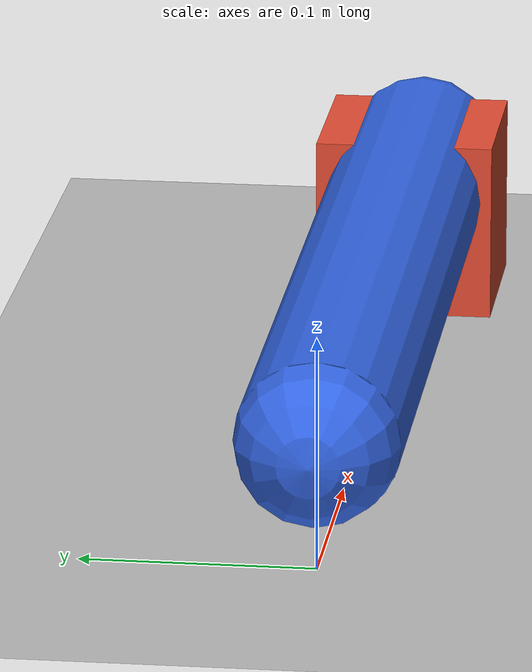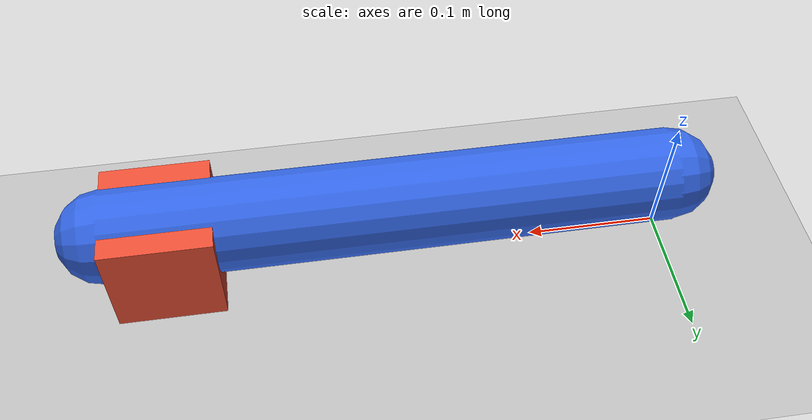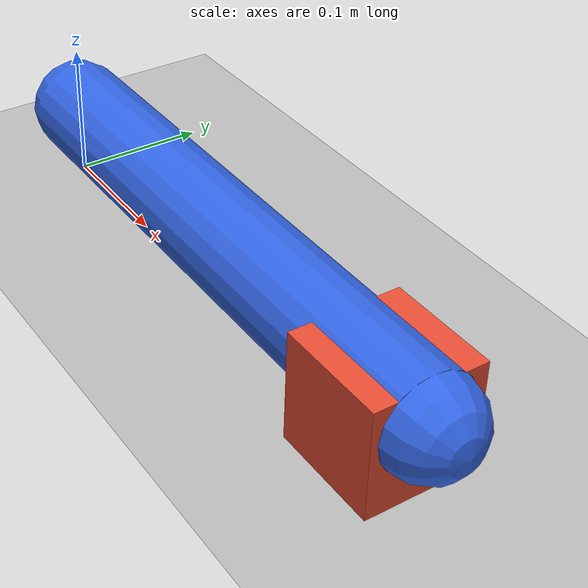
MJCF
<mujoco model="phiagent_tabletop_push_cosmos">
  <option timestep="0.002" gravity="0 0 -9.81"/>
  <worldbody>
    <light pos="0 0 2" dir="0 0 -1"/>
    <camera name="cosmos_control" pos="0 0 1.2" xyaxes="1 0 0 0 1 0"
            fovy="45"/>
    <geom name="table" type="plane" size="1 1 0.05"
          friction="1.0 0.01 0.001" rgba="0.72 0.72 0.72 1"/>
    <body name="arm" pos="0 0 0.055">
      <joint name="joint1" type="hinge" axis="0 0 1" range="-90 90"
             damping="4"/>
      <geom name="arm_link" type="capsule" fromto="0 0 0 0.42 0 0"
            size="0.035" mass="2" friction="1.0 0.01 0.001"
            rgba="0.2 0.4 0.9 1"/>
    </body>
    <body name="object" pos="0.38 0 0.041">
      <freejoint/>
      <geom name="object_geom" type="box" size="0.04 0.04 0.04"
            mass="0.2" friction="0.8 0.01 0.001" rgba="0.9 0.3 0.2 1"/>
    </body>
  </worldbody>
  <actuator>
    <position name="joint1_position" joint="joint1" kp="140"/>
  </actuator>
</mujoco>
